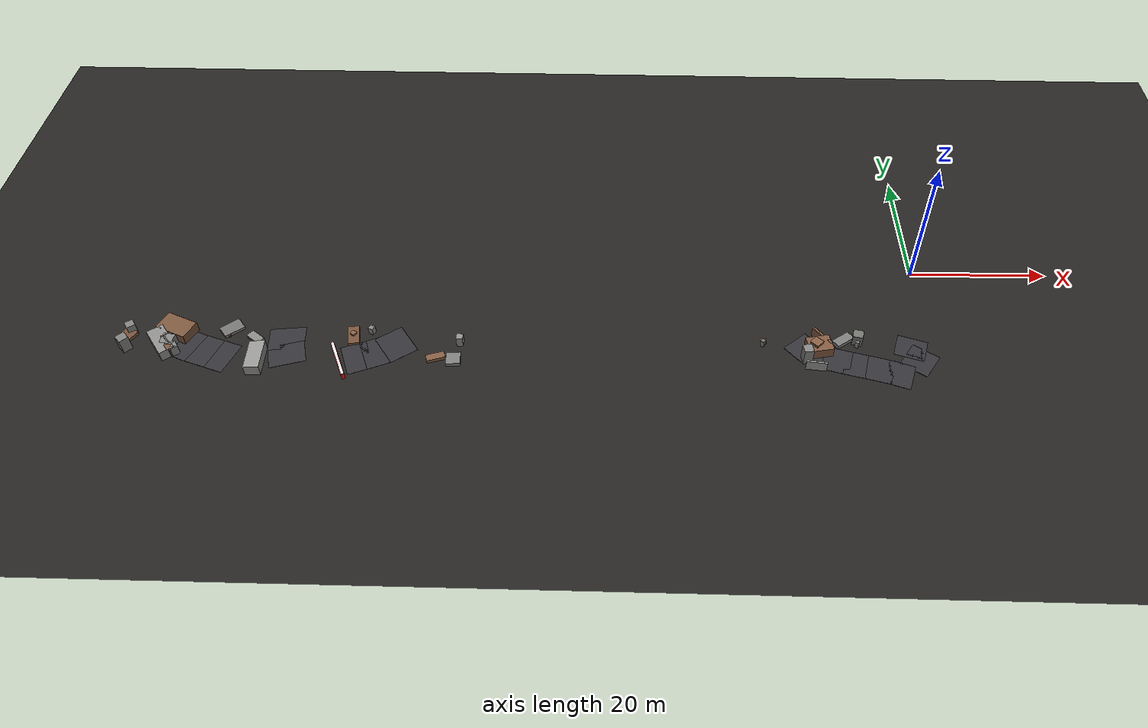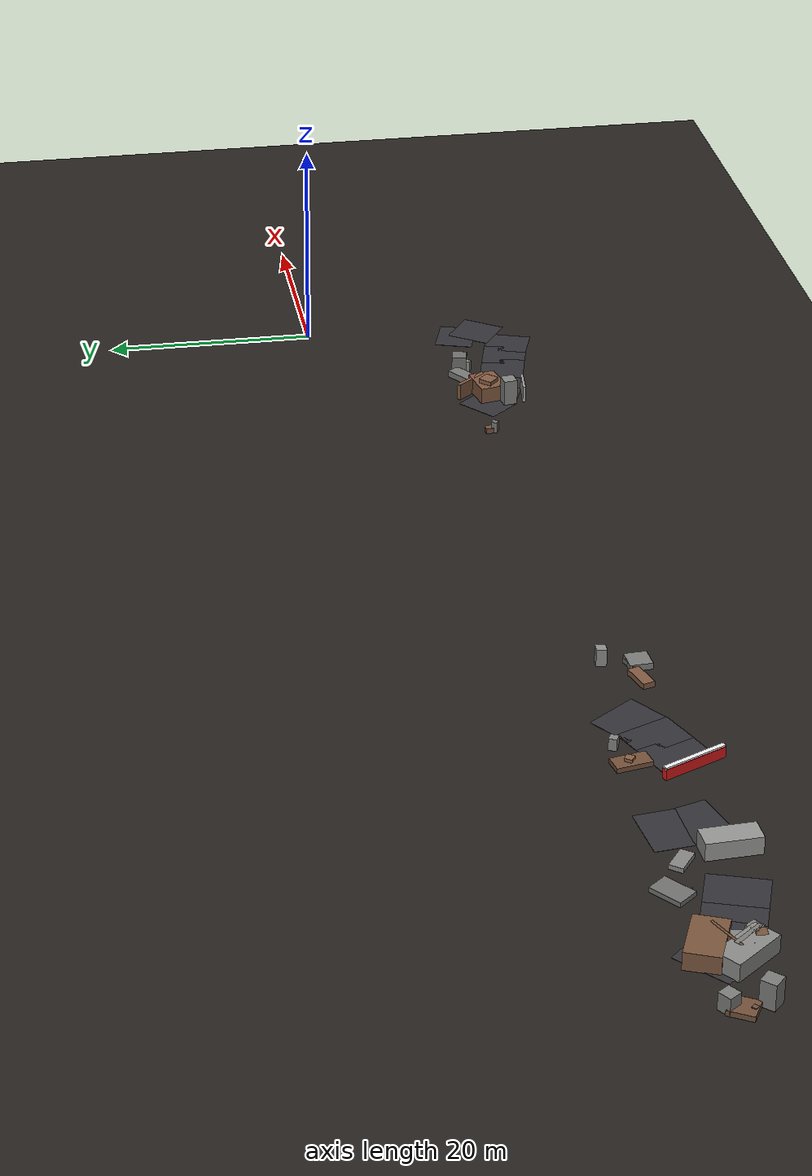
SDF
<sdf version="1.6">
 <world name="navitas_arena">
  <model name="ground_plane">
   <static>true</static>
   <link name="link">
    <collision name="collision">
     <geometry><plane><normal>0 0 1</normal><size>400 400</size></plane></geometry>
     <surface><friction><ode><mu>0.750</mu><mu2>0.750</mu2></ode></friction></surface>
    </collision>
    <visual name="visual">
     <cast_shadows>false</cast_shadows>
     <geometry><plane><normal>0 0 1</normal><size>400 400</size></plane></geometry>
     <material><ambient>0.150 0.140 0.130 1</ambient><diffuse>0.150 0.140 0.130 1</diffuse></material>
    </visual>
   </link>
  </model>
  <model name="road_kolay_1_3">
   <static>true</static>
   <pose>-99.386 -18.612 0.040 0 0 2.817</pose>
   <link name="link">
    <collision name="col"><geometry><box><size>3.696 5.100 0.020</size></box></geometry></collision>
    <visual name="vis">
     <geometry><box><size>3.696 5.100 0.020</size></box></geometry>
     <material><ambient>0.20 0.20 0.22 1</ambient><diffuse>0.20 0.20 0.22 1</diffuse></material>
    </visual>
   </link>
  </model>
  <model name="road_kolay_1_4">
   <static>true</static>
   <pose>-102.119 -17.697 0.040 0 0 2.819</pose>
   <link name="link">
    <collision name="col"><geometry><box><size>3.868 5.100 0.020</size></box></geometry></collision>
    <visual name="vis">
     <geometry><box><size>3.868 5.100 0.020</size></box></geometry>
     <material><ambient>0.20 0.20 0.22 1</ambient><diffuse>0.20 0.20 0.22 1</diffuse></material>
    </visual>
   </link>
  </model>
  <model name="road_kolay_1_5">
   <static>true</static>
   <pose>-104.772 -16.707 0.040 0 0 2.746</pose>
   <link name="link">
    <collision name="col"><geometry><box><size>3.599 5.100 0.020</size></box></geometry></collision>
    <visual name="vis">
     <geometry><box><size>3.599 5.100 0.020</size></box></geometry>
     <material><ambient>0.20 0.20 0.22 1</ambient><diffuse>0.20 0.20 0.22 1</diffuse></material>
    </visual>
   </link>
  </model>
  <model name="road_kolay_1_6">
   <static>true</static>
   <pose>-107.125 -14.974 0.040 0 0 2.311</pose>
   <link name="link">
    <collision name="col"><geometry><box><size>4.187 5.100 0.020</size></box></geometry></collision>
    <visual name="vis">
     <geometry><box><size>4.187 5.100 0.020</size></box></geometry>
     <material><ambient>0.20 0.20 0.22 1</ambient><diffuse>0.20 0.20 0.22 1</diffuse></material>
    </visual>
   </link>
  </model>
  <model name="road_kolay_2_1">
   <static>true</static>
   <pose>-90.166 -18.111 0.040 0 0 1.862</pose>
   <link name="link">
    <collision name="col"><geometry><box><size>3.800 5.100 0.020</size></box></geometry></collision>
    <visual name="vis">
     <geometry><box><size>3.800 5.100 0.020</size></box></geometry>
     <material><ambient>0.20 0.20 0.22 1</ambient><diffuse>0.20 0.20 0.22 1</diffuse></material>
    </visual>
   </link>
  </model>
  <model name="road_kolay_2_2">
   <static>true</static>
   <pose>-90.755 -15.241 0.040 0 0 1.687</pose>
   <link name="link">
    <collision name="col"><geometry><box><size>3.882 5.100 0.020</size></box></geometry></collision>
    <visual name="vis">
     <geometry><box><size>3.882 5.100 0.020</size></box></geometry>
     <material><ambient>0.20 0.20 0.22 1</ambient><diffuse>0.20 0.20 0.22 1</diffuse></material>
    </visual>
   </link>
  </model>
  <model name="road_kolay_3_3">
   <static>true</static>
   <pose>-80.211 -18.499 0.040 0 0 0.380</pose>
   <link name="link">
    <collision name="col"><geometry><box><size>3.611 5.100 0.020</size></box></geometry></collision>
    <visual name="vis">
     <geometry><box><size>3.611 5.100 0.020</size></box></geometry>
     <material><ambient>0.20 0.20 0.22 1</ambient><diffuse>0.20 0.20 0.22 1</diffuse></material>
    </visual>
   </link>
  </model>
  <model name="road_kolay_3_4">
   <static>true</static>
   <pose>-77.682 -17.455 0.040 0 0 0.402</pose>
   <link name="link">
    <collision name="col"><geometry><box><size>3.661 5.100 0.020</size></box></geometry></collision>
    <visual name="vis">
     <geometry><box><size>3.661 5.100 0.020</size></box></geometry>
     <material><ambient>0.20 0.20 0.22 1</ambient><diffuse>0.20 0.20 0.22 1</diffuse></material>
    </visual>
   </link>
  </model>
  <model name="road_kolay_3_5">
   <static>true</static>
   <pose>-75.077 -15.957 0.040 0 0 0.622</pose>
   <link name="link">
    <collision name="col"><geometry><box><size>4.185 5.100 0.020</size></box></geometry></collision>
    <visual name="vis">
     <geometry><box><size>4.185 5.100 0.020</size></box></geometry>
     <material><ambient>0.20 0.20 0.22 1</ambient><diffuse>0.20 0.20 0.22 1</diffuse></material>
    </visual>
   </link>
  </model>
  <model name="blk_kolay_1_0_0">
   <static>true</static>
   <pose>-106.695 -17.472 0.800 0 0 2.249</pose>
   <link name="link">
    <collision name="col"><geometry><box><size>3.062 0.418 1.600</size></box></geometry></collision>
    <visual name="vis">
     <geometry><box><size>3.062 0.418 1.600</size></box></geometry>
     <material><ambient>0.49 0.49 0.48 1</ambient><diffuse>0.49 0.49 0.48 1</diffuse></material>
    </visual>
   </link>
  </model>
  <model name="blk_kolay_1_0_2">
   <static>true</static>
   <pose>-106.574 -18.451 0.800 0 0 1.519</pose>
   <link name="link">
    <collision name="col"><geometry><box><size>0.954 0.954 1.600</size></box></geometry></collision>
    <visual name="vis">
     <geometry><box><size>0.954 0.954 1.600</size></box></geometry>
     <material><ambient>0.48 0.34 0.24 1</ambient><diffuse>0.48 0.34 0.24 1</diffuse></material>
    </visual>
   </link>
  </model>
  <model name="blk_kolay_1_0_3">
   <static>true</static>
   <pose>-106.473 -14.396 0.800 0 0 2.748</pose>
   <link name="link">
    <collision name="col"><geometry><box><size>4.836 2.939 1.600</size></box></geometry></collision>
    <visual name="vis">
     <geometry><box><size>4.836 2.939 1.600</size></box></geometry>
     <material><ambient>0.48 0.34 0.24 1</ambient><diffuse>0.48 0.34 0.24 1</diffuse></material>
    </visual>
   </link>
  </model>
  <model name="blk_kolay_1_0_4">
   <static>true</static>
   <pose>-106.361 -15.901 0.800 0 0 0.434</pose>
   <link name="link">
    <collision name="col"><geometry><box><size>3.586 0.243 1.600</size></box></geometry></collision>
    <visual name="vis">
     <geometry><box><size>3.586 0.243 1.600</size></box></geometry>
     <material><ambient>0.48 0.34 0.24 1</ambient><diffuse>0.48 0.34 0.24 1</diffuse></material>
    </visual>
   </link>
  </model>
  <model name="blk_kolay_1_0_5">
   <static>true</static>
   <pose>-107.823 -17.091 0.800 0 0 2.238</pose>
   <link name="link">
    <collision name="col"><geometry><box><size>4.949 2.385 1.600</size></box></geometry></collision>
    <visual name="vis">
     <geometry><box><size>4.949 2.385 1.600</size></box></geometry>
     <material><ambient>0.55 0.55 0.54 1</ambient><diffuse>0.55 0.55 0.54 1</diffuse></material>
    </visual>
   </link>
  </model>
  <model name="blk_kolay_1_0_6">
   <static>true</static>
   <pose>-106.975 -16.943 0.800 0 0 1.425</pose>
   <link name="link">
    <collision name="col"><geometry><box><size>1.731 1.731 1.600</size></box></geometry></collision>
    <visual name="vis">
     <geometry><box><size>1.731 1.731 1.600</size></box></geometry>
     <material><ambient>0.52 0.52 0.51 1</ambient><diffuse>0.52 0.52 0.51 1</diffuse></material>
    </visual>
   </link>
  </model>
  <model name="blk_kolay_1_0_7">
   <static>true</static>
   <pose>-105.814 -18.186 0.800 0 0 0.638</pose>
   <link name="link">
    <collision name="col"><geometry><box><size>1.049 1.049 1.600</size></box></geometry></collision>
    <visual name="vis">
     <geometry><box><size>1.049 1.049 1.600</size></box></geometry>
     <material><ambient>0.51 0.51 0.50 1</ambient><diffuse>0.51 0.51 0.50 1</diffuse></material>
    </visual>
   </link>
  </model>
  <model name="bar_kolay_3">
   <static>true</static>
   <pose>-82.550 -19.500 0.500 0 0 2.002</pose>
   <link name="link">
    <collision name="col"><geometry><box><size>6.100 0.500 1.000</size></box></geometry></collision>
    <visual name="vis">
     <geometry><box><size>6.100 0.500 1.000</size></box></geometry>
     <material><ambient>0.85 0.10 0.10 1</ambient><diffuse>0.85 0.10 0.10 1</diffuse></material>
    </visual>
   </link>
  </model>
  <model name="bar_kolay_3b">
   <static>true</static>
   <pose>-82.550 -19.500 1.000 0 0 2.002</pose>
   <link name="link">
    <collision name="col"><geometry><box><size>6.100 0.400 0.300</size></box></geometry></collision>
    <visual name="vis">
     <geometry><box><size>6.100 0.400 0.300</size></box></geometry>
     <material><ambient>0.95 0.95 0.95 1</ambient><diffuse>0.95 0.95 0.95 1</diffuse></material>
    </visual>
   </link>
  </model>
  <model name="deb_kolay_10">
   <static>true</static>
   <pose>-78.828 -13.725 0.549 0 0 1.117</pose>
   <link name="link">
    <collision name="col"><geometry><box><size>0.723 0.723 1.098</size></box></geometry></collision>
    <visual name="vis">
     <geometry><box><size>0.723 0.723 1.098</size></box></geometry>
     <material><ambient>0.52 0.52 0.51 1</ambient><diffuse>0.52 0.52 0.51 1</diffuse></material>
    </visual>
   </link>
  </model>
  <model name="deb_kolay_18">
   <static>true</static>
   <pose>-113.036 -17.517 1.159 0 0 0.818</pose>
   <link name="link">
    <collision name="col"><geometry><box><size>1.365 1.365 2.318</size></box></geometry></collision>
    <visual name="vis">
     <geometry><box><size>1.365 1.365 2.318</size></box></geometry>
     <material><ambient>0.49 0.49 0.48 1</ambient><diffuse>0.49 0.49 0.48 1</diffuse></material>
    </visual>
   </link>
  </model>
  <model name="deb_kolay_35">
   <static>true</static>
   <pose>-81.332 -14.470 0.365 0 0 2.527</pose>
   <link name="link">
    <collision name="col"><geometry><box><size>0.705 0.705 0.730</size></box></geometry></collision>
    <visual name="vis">
     <geometry><box><size>0.705 0.705 0.730</size></box></geometry>
     <material><ambient>0.55 0.38 0.27 1</ambient><diffuse>0.55 0.38 0.27 1</diffuse></material>
    </visual>
   </link>
  </model>
  <model name="deb_kolay_47">
   <static>true</static>
   <pose>-95.186 -15.351 0.215 0 0 2.503</pose>
   <link name="link">
    <collision name="col"><geometry><box><size>2.354 1.223 0.429</size></box></geometry></collision>
    <visual name="vis">
     <geometry><box><size>2.354 1.223 0.429</size></box></geometry>
     <material><ambient>0.53 0.53 0.52 1</ambient><diffuse>0.53 0.53 0.52 1</diffuse></material>
    </visual>
   </link>
  </model>
  <model name="deb_kolay_60">
   <static>true</static>
   <pose>-98.953 -13.704 0.218 0 0 0.683</pose>
   <link name="link">
    <collision name="col"><geometry><box><size>3.007 1.998 0.436</size></box></geometry></collision>
    <visual name="vis">
     <geometry><box><size>3.007 1.998 0.436</size></box></geometry>
     <material><ambient>0.45 0.45 0.44 1</ambient><diffuse>0.45 0.45 0.44 1</diffuse></material>
    </visual>
   </link>
  </model>
  <model name="deb_kolay_75">
   <static>true</static>
   <pose>-81.334 -14.614 0.222 0 0 1.764</pose>
   <link name="link">
    <collision name="col"><geometry><box><size>3.192 1.636 0.444</size></box></geometry></collision>
    <visual name="vis">
     <geometry><box><size>3.192 1.636 0.444</size></box></geometry>
     <material><ambient>0.46 0.32 0.23 1</ambient><diffuse>0.46 0.32 0.23 1</diffuse></material>
    </visual>
   </link>
  </model>
  <model name="deb_kolay_78">
   <static>true</static>
   <pose>-66.627 -18.637 0.300 0 0 0.064</pose>
   <link name="link">
    <collision name="col"><geometry><box><size>1.993 2.034 0.600</size></box></geometry></collision>
    <visual name="vis">
     <geometry><box><size>1.993 2.034 0.600</size></box></geometry>
     <material><ambient>0.49 0.49 0.48 1</ambient><diffuse>0.49 0.49 0.48 1</diffuse></material>
    </visual>
   </link>
  </model>
  <model name="deb_kolay_104">
   <static>true</static>
   <pose>-113.492 -15.390 0.239 0 0 1.055</pose>
   <link name="link">
    <collision name="col"><geometry><box><size>2.223 2.016 0.478</size></box></geometry></collision>
    <visual name="vis">
     <geometry><box><size>2.223 2.016 0.478</size></box></geometry>
     <material><ambient>0.45 0.32 0.23 1</ambient><diffuse>0.45 0.32 0.23 1</diffuse></material>
    </visual>
   </link>
  </model>
  <model name="deb_kolay_109">
   <static>true</static>
   <pose>-67.161 -17.862 0.255 0 0 0.302</pose>
   <link name="link">
    <collision name="col"><geometry><box><size>2.323 0.244 0.510</size></box></geometry></collision>
    <visual name="vis">
     <geometry><box><size>2.323 0.244 0.510</size></box></geometry>
     <material><ambient>0.44 0.44 0.43 1</ambient><diffuse>0.44 0.44 0.43 1</diffuse></material>
    </visual>
   </link>
  </model>
  <model name="deb_kolay_118">
   <static>true</static>
   <pose>-66.004 -15.526 0.812 0 0 3.070</pose>
   <link name="link">
    <collision name="col"><geometry><box><size>0.912 0.912 1.625</size></box></geometry></collision>
    <visual name="vis">
     <geometry><box><size>0.912 0.912 1.625</size></box></geometry>
     <material><ambient>0.56 0.56 0.55 1</ambient><diffuse>0.56 0.56 0.55 1</diffuse></material>
    </visual>
   </link>
  </model>
  <model name="deb_kolay_140">
   <static>true</static>
   <pose>-113.191 -14.352 0.783 0 0 2.183</pose>
   <link name="link">
    <collision name="col"><geometry><box><size>1.201 1.201 1.567</size></box></geometry></collision>
    <visual name="vis">
     <geometry><box><size>1.201 1.201 1.567</size></box></geometry>
     <material><ambient>0.50 0.50 0.49 1</ambient><diffuse>0.50 0.50 0.49 1</diffuse></material>
    </visual>
   </link>
  </model>
  <model name="deb_kolay_144">
   <static>true</static>
   <pose>-113.803 -16.130 0.277 0 0 2.392</pose>
   <link name="link">
    <collision name="col"><geometry><box><size>0.430 0.430 0.555</size></box></geometry></collision>
    <visual name="vis">
     <geometry><box><size>0.430 0.430 0.555</size></box></geometry>
     <material><ambient>0.45 0.32 0.23 1</ambient><diffuse>0.45 0.32 0.23 1</diffuse></material>
    </visual>
   </link>
  </model>
  <model name="deb_kolay_181">
   <static>true</static>
   <pose>-69.169 -18.299 0.264 0 0 0.306</pose>
   <link name="link">
    <collision name="col"><geometry><box><size>2.631 1.102 0.527</size></box></geometry></collision>
    <visual name="vis">
     <geometry><box><size>2.631 1.102 0.527</size></box></geometry>
     <material><ambient>0.51 0.36 0.26 1</ambient><diffuse>0.51 0.36 0.26 1</diffuse></material>
    </visual>
   </link>
  </model>
  <model name="deb_kolay_184">
   <static>true</static>
   <pose>-98.835 -14.292 0.209 0 0 1.457</pose>
   <link name="link">
    <collision name="col"><geometry><box><size>1.888 0.167 0.417</size></box></geometry></collision>
    <visual name="vis">
     <geometry><box><size>1.888 0.167 0.417</size></box></geometry>
     <material><ambient>0.54 0.38 0.27 1</ambient><diffuse>0.54 0.38 0.27 1</diffuse></material>
    </visual>
   </link>
  </model>
  <model name="chic_kolay_0">
   <static>true</static>
   <pose>-94.076 -19.451 0.800 0 0 1.623</pose>
   <link name="link">
    <collision name="col"><geometry><box><size>4.780 2.135 1.600</size></box></geometry></collision>
    <visual name="vis">
     <geometry><box><size>4.780 2.135 1.600</size></box></geometry>
     <material><ambient>0.59 0.59 0.58 1</ambient><diffuse>0.59 0.59 0.58 1</diffuse></material>
    </visual>
   </link>
  </model>
  <model name="road_orta_1_3">
   <static>true</static>
   <pose>-4.730 -19.574 0.040 0 0 2.810</pose>
   <link name="link">
    <collision name="col"><geometry><box><size>3.574 4.250 0.020</size></box></geometry></collision>
    <visual name="vis">
     <geometry><box><size>3.574 4.250 0.020</size></box></geometry>
     <material><ambient>0.20 0.20 0.22 1</ambient><diffuse>0.20 0.20 0.22 1</diffuse></material>
    </visual>
   </link>
  </model>
  <model name="road_orta_1_4">
   <static>true</static>
   <pose>-7.347 -18.775 0.040 0 0 2.880</pose>
   <link name="link">
    <collision name="col"><geometry><box><size>3.702 4.250 0.020</size></box></geometry></collision>
    <visual name="vis">
     <geometry><box><size>3.702 4.250 0.020</size></box></geometry>
     <material><ambient>0.20 0.20 0.22 1</ambient><diffuse>0.20 0.20 0.22 1</diffuse></material>
    </visual>
   </link>
  </model>
  <model name="road_orta_1_5">
   <static>true</static>
   <pose>-10.191 -18.038 0.040 0 0 2.895</pose>
   <link name="link">
    <collision name="col"><geometry><box><size>3.975 4.250 0.020</size></box></geometry></collision>
    <visual name="vis">
     <geometry><box><size>3.975 4.250 0.020</size></box></geometry>
     <material><ambient>0.20 0.20 0.22 1</ambient><diffuse>0.20 0.20 0.22 1</diffuse></material>
    </visual>
   </link>
  </model>
  <model name="road_orta_1_6">
   <static>true</static>
   <pose>-13.109 -17.263 0.040 0 0 2.868</pose>
   <link name="link">
    <collision name="col"><geometry><box><size>3.864 4.250 0.020</size></box></geometry></collision>
    <visual name="vis">
     <geometry><box><size>3.864 4.250 0.020</size></box></geometry>
     <material><ambient>0.20 0.20 0.22 1</ambient><diffuse>0.20 0.20 0.22 1</diffuse></material>
    </visual>
   </link>
  </model>
  <model name="road_orta_1_7">
   <static>true</static>
   <pose>-15.696 -16.423 0.040 0 0 2.780</pose>
   <link name="link">
    <collision name="col"><geometry><box><size>3.382 4.250 0.020</size></box></geometry></collision>
    <visual name="vis">
     <geometry><box><size>3.382 4.250 0.020</size></box></geometry>
     <material><ambient>0.20 0.20 0.22 1</ambient><diffuse>0.20 0.20 0.22 1</diffuse></material>
    </visual>
   </link>
  </model>
  <model name="road_orta_1_8">
   <static>true</static>
   <pose>-17.645 -15.058 0.040 0 0 2.276</pose>
   <link name="link">
    <collision name="col"><geometry><box><size>3.333 4.250 0.020</size></box></geometry></collision>
    <visual name="vis">
     <geometry><box><size>3.333 4.250 0.020</size></box></geometry>
     <material><ambient>0.20 0.20 0.22 1</ambient><diffuse>0.20 0.20 0.22 1</diffuse></material>
    </visual>
   </link>
  </model>
  <model name="road_orta_2_2">
   <static>true</static>
   <pose>-1.566 -16.984 0.040 0 0 2.538</pose>
   <link name="link">
    <collision name="col"><geometry><box><size>4.099 4.250 0.020</size></box></geometry></collision>
    <visual name="vis">
     <geometry><box><size>4.099 4.250 0.020</size></box></geometry>
     <material><ambient>0.20 0.20 0.22 1</ambient><diffuse>0.20 0.20 0.22 1</diffuse></material>
    </visual>
   </link>
  </model>
  <model name="road_orta_2_3">
   <static>true</static>
   <pose>-2.454 -14.751 0.040 0 0 1.259</pose>
   <link name="link">
    <collision name="col"><geometry><box><size>3.685 4.250 0.020</size></box></geometry></collision>
    <visual name="vis">
     <geometry><box><size>3.685 4.250 0.020</size></box></geometry>
     <material><ambient>0.20 0.20 0.22 1</ambient><diffuse>0.20 0.20 0.22 1</diffuse></material>
    </visual>
   </link>
  </model>
  <model name="blk_orta_1_0_0">
   <static>true</static>
   <pose>-15.111 -15.424 0.800 0 0 2.405</pose>
   <link name="link">
    <collision name="col"><geometry><box><size>0.711 0.711 1.600</size></box></geometry></collision>
    <visual name="vis">
     <geometry><box><size>0.711 0.711 1.600</size></box></geometry>
     <material><ambient>0.44 0.44 0.43 1</ambient><diffuse>0.44 0.44 0.43 1</diffuse></material>
    </visual>
   </link>
  </model>
  <model name="blk_orta_1_0_1">
   <static>true</static>
   <pose>-14.967 -13.961 0.800 0 0 2.249</pose>
   <link name="link">
    <collision name="col"><geometry><box><size>3.618 0.363 1.600</size></box></geometry></collision>
    <visual name="vis">
     <geometry><box><size>3.618 0.363 1.600</size></box></geometry>
     <material><ambient>0.51 0.36 0.26 1</ambient><diffuse>0.51 0.36 0.26 1</diffuse></material>
    </visual>
   </link>
  </model>
  <model name="blk_orta_1_0_2">
   <static>true</static>
   <pose>-15.949 -15.507 1.005 0 0 2.392</pose>
   <link name="link">
    <collision name="col"><geometry><box><size>1.354 1.354 2.010</size></box></geometry></collision>
    <visual name="vis">
     <geometry><box><size>1.354 1.354 2.010</size></box></geometry>
     <material><ambient>0.53 0.37 0.27 1</ambient><diffuse>0.53 0.37 0.27 1</diffuse></material>
    </visual>
   </link>
  </model>
  <model name="blk_orta_1_0_3">
   <static>true</static>
   <pose>-15.522 -15.498 0.800 0 0 0.198</pose>
   <link name="link">
    <collision name="col"><geometry><box><size>3.401 2.647 1.600</size></box></geometry></collision>
    <visual name="vis">
     <geometry><box><size>3.401 2.647 1.600</size></box></geometry>
     <material><ambient>0.51 0.35 0.25 1</ambient><diffuse>0.51 0.35 0.25 1</diffuse></material>
    </visual>
   </link>
  </model>
  <model name="blk_orta_1_0_4">
   <static>true</static>
   <pose>-17.407 -17.217 1.279 0 0 1.732</pose>
   <link name="link">
    <collision name="col"><geometry><box><size>1.310 1.310 2.557</size></box></geometry></collision>
    <visual name="vis">
     <geometry><box><size>1.310 1.310 2.557</size></box></geometry>
     <material><ambient>0.52 0.52 0.51 1</ambient><diffuse>0.52 0.52 0.51 1</diffuse></material>
    </visual>
   </link>
  </model>
  <model name="blk_orta_1_0_5">
   <static>true</static>
   <pose>-16.272 -18.886 0.800 0 0 3.028</pose>
   <link name="link">
    <collision name="col"><geometry><box><size>2.858 0.256 1.600</size></box></geometry></collision>
    <visual name="vis">
     <geometry><box><size>2.858 0.256 1.600</size></box></geometry>
     <material><ambient>0.61 0.61 0.60 1</ambient><diffuse>0.61 0.61 0.60 1</diffuse></material>
    </visual>
   </link>
  </model>
  <model name="deb_orta_33">
   <static>true</static>
   <pose>-23.216 -14.211 0.249 0 0 0.016</pose>
   <link name="link">
    <collision name="col"><geometry><box><size>0.761 0.761 0.498</size></box></geometry></collision>
    <visual name="vis">
     <geometry><box><size>0.761 0.761 0.498</size></box></geometry>
     <material><ambient>0.45 0.32 0.23 1</ambient><diffuse>0.45 0.32 0.23 1</diffuse></material>
    </visual>
   </link>
  </model>
  <model name="deb_orta_147">
   <static>true</static>
   <pose>-23.315 -14.753 0.550 0 0 2.637</pose>
   <link name="link">
    <collision name="col"><geometry><box><size>0.538 0.538 1.099</size></box></geometry></collision>
    <visual name="vis">
     <geometry><box><size>0.538 0.538 1.099</size></box></geometry>
     <material><ambient>0.46 0.46 0.45 1</ambient><diffuse>0.46 0.46 0.45 1</diffuse></material>
    </visual>
   </link>
  </model>
  <model name="deb_orta_198">
   <static>true</static>
   <pose>-10.044 -14.603 0.519 0 0 0.981</pose>
   <link name="link">
    <collision name="col"><geometry><box><size>0.470 0.470 1.039</size></box></geometry></collision>
    <visual name="vis">
     <geometry><box><size>0.470 0.470 1.039</size></box></geometry>
     <material><ambient>0.55 0.55 0.54 1</ambient><diffuse>0.55 0.55 0.54 1</diffuse></material>
    </visual>
   </link>
  </model>
  <model name="deb_orta_199">
   <static>true</static>
   <pose>-11.937 -13.811 0.319 0 0 0.613</pose>
   <link name="link">
    <collision name="col"><geometry><box><size>2.951 1.313 0.638</size></box></geometry></collision>
    <visual name="vis">
     <geometry><box><size>2.951 1.313 0.638</size></box></geometry>
     <material><ambient>0.48 0.48 0.47 1</ambient><diffuse>0.48 0.48 0.47 1</diffuse></material>
    </visual>
   </link>
  </model>
  <model name="deb_orta_229">
   <static>true</static>
   <pose>-9.929 -13.712 0.871 0 0 2.925</pose>
   <link name="link">
    <collision name="col"><geometry><box><size>1.406 1.406 1.742</size></box></geometry></collision>
    <visual name="vis">
     <geometry><box><size>1.406 1.406 1.742</size></box></geometry>
     <material><ambient>0.44 0.44 0.43 1</ambient><diffuse>0.44 0.44 0.43 1</diffuse></material>
    </visual>
   </link>
  </model>
 </world>
</sdf>
